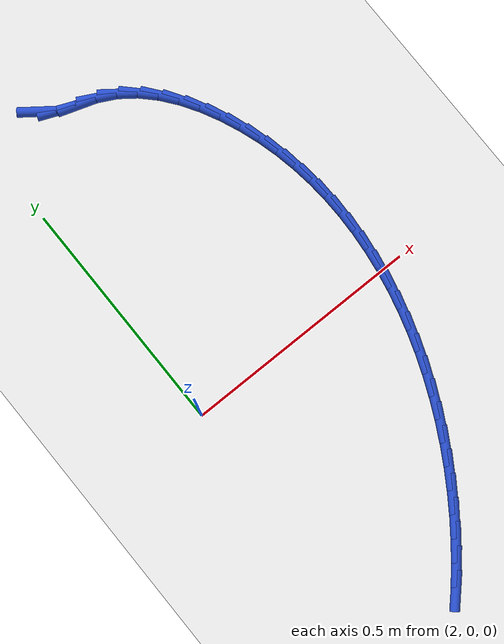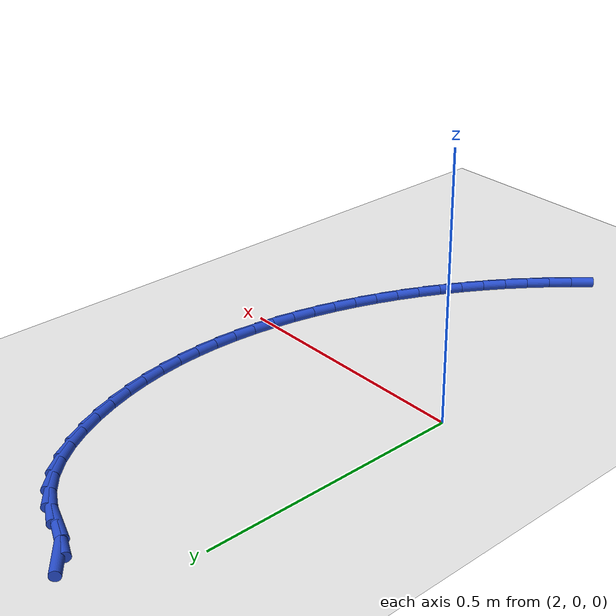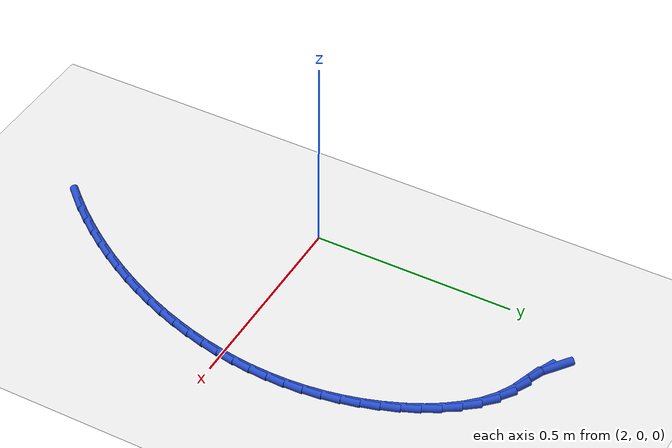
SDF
<sdf version="1.6">
 <world name="default">
  <model name="ground_plane">
   <static>1</static>
   <link name="link">
    <collision name="collision">
     <geometry><plane><normal>0 0 1</normal><size>100 100</size></plane></geometry>
     <surface><friction><ode><mu>100</mu><mu2>50</mu2></ode></friction></surface>
    </collision>
    <visual name="visual">
     <cast_shadows>0</cast_shadows>
     <geometry><plane><normal>0 0 1</normal><size>100 100</size></plane></geometry>
     <material>
      <script><uri>file://media/materials/scripts/gazebo.material</uri><name>Gazebo/WhiteGlow</name></script>
     </material>
    </visual>
   </link>
  </model>
  <model name="line">
   <link name="link_84">
    <pose>2.12291546154615 0.6742505764167075 0.01 0 1.57 -0.6407067921363031</pose>
    <collision name="collision">
     <geometry><cylinder><radius>0.01</radius><length>0.08</length></cylinder></geometry>
    </collision>
    <visual name="visual">
     <material>
      <script><name>Gazebo/Blue</name><uri>file://media/materials/scripts/gazebo.material</uri></script>
     </material>
     <geometry><cylinder><radius>0.01</radius><length>0.08</length></cylinder></geometry>
    </visual>
   </link>
   <link name="link_85">
    <pose>2.1539630951923665 0.6511001257214823 0.01 0 1.57 -0.39601721792617645</pose>
    <collision name="collision">
     <geometry><cylinder><radius>0.01</radius><length>0.08</length></cylinder></geometry>
    </collision>
    <visual name="visual">
     <material>
      <script><name>Gazebo/Blue</name><uri>file://media/materials/scripts/gazebo.material</uri></script>
     </material>
     <geometry><cylinder><radius>0.01</radius><length>0.08</length></cylinder></geometry>
    </visual>
   </link>
   <link name="link_86">
    <pose>2.1913532682345194 0.635467056369339 0.01 0 1.57 -0.3189362826762241</pose>
    <collision name="collision">
     <geometry><cylinder><radius>0.01</radius><length>0.08</length></cylinder></geometry>
    </collision>
    <visual name="visual">
     <material>
      <script><name>Gazebo/Blue</name><uri>file://media/materials/scripts/gazebo.material</uri></script>
     </material>
     <geometry><cylinder><radius>0.01</radius><length>0.08</length></cylinder></geometry>
    </visual>
   </link>
   <link name="link_87">
    <pose>2.231616586133669 0.6221717348677379 0.01 0 1.57 -0.4770995167074334</pose>
    <collision name="collision">
     <geometry><cylinder><radius>0.01</radius><length>0.08</length></cylinder></geometry>
    </collision>
    <visual name="visual">
     <material>
      <script><name>Gazebo/Blue</name><uri>file://media/materials/scripts/gazebo.material</uri></script>
     </material>
     <geometry><cylinder><radius>0.01</radius><length>0.08</length></cylinder></geometry>
    </visual>
   </link>
   <link name="link_88">
    <pose>2.268812657128706 0.6029439782686185 0.01 0 1.57 -0.6448412242707166</pose>
    <collision name="collision">
     <geometry><cylinder><radius>0.01</radius><length>0.08</length></cylinder></geometry>
    </collision>
    <visual name="visual">
     <material>
      <script><name>Gazebo/Blue</name><uri>file://media/materials/scripts/gazebo.material</uri></script>
     </material>
     <geometry><cylinder><radius>0.01</radius><length>0.08</length></cylinder></geometry>
    </visual>
   </link>
   <link name="link_89">
    <pose>2.3023825707190997 0.5776961792482437 0.01 0 1.57 -0.7897595406359486</pose>
    <collision name="collision">
     <geometry><cylinder><radius>0.01</radius><length>0.08</length></cylinder></geometry>
    </collision>
    <visual name="visual">
     <material>
      <script><name>Gazebo/Blue</name><uri>file://media/materials/scripts/gazebo.material</uri></script>
     </material>
     <geometry><cylinder><radius>0.01</radius><length>0.08</length></cylinder></geometry>
    </visual>
   </link>
   <link name="link_90">
    <pose>2.3324466110636592 0.5473687472407215 0.01 0 1.57 -0.9120884586671185</pose>
    <collision name="collision">
     <geometry><cylinder><radius>0.01</radius><length>0.08</length></cylinder></geometry>
    </collision>
    <visual name="visual">
     <material>
      <script><name>Gazebo/Blue</name><uri>file://media/materials/scripts/gazebo.material</uri></script>
     </material>
     <geometry><cylinder><radius>0.01</radius><length>0.08</length></cylinder></geometry>
    </visual>
   </link>
   <link name="link_91">
    <pose>2.3591250623211986 0.5129020916801605 0.01 0 1.57 -1.0146401314525444</pose>
    <collision name="collision">
     <geometry><cylinder><radius>0.01</radius><length>0.08</length></cylinder></geometry>
    </collision>
    <visual name="visual">
     <material>
      <script><name>Gazebo/Blue</name><uri>file://media/materials/scripts/gazebo.material</uri></script>
     </material>
     <geometry><cylinder><radius>0.01</radius><length>0.08</length></cylinder></geometry>
    </visual>
   </link>
   <link name="link_92">
    <pose>2.382538208650529 0.47523662200066935 0.01 0 1.57 -1.1010321141788486</pose>
    <collision name="collision">
     <geometry><cylinder><radius>0.01</radius><length>0.08</length></cylinder></geometry>
    </collision>
    <visual name="visual">
     <material>
      <script><name>Gazebo/Blue</name><uri>file://media/materials/scripts/gazebo.material</uri></script>
     </material>
     <geometry><cylinder><radius>0.01</radius><length>0.08</length></cylinder></geometry>
    </visual>
   </link>
   <link name="link_93">
    <pose>2.4028063342104624 0.43531274763635613 0.01 0 1.57 -1.1748579690619192</pose>
    <collision name="collision">
     <geometry><cylinder><radius>0.01</radius><length>0.08</length></cylinder></geometry>
    </collision>
    <visual name="visual">
     <material>
      <script><name>Gazebo/Blue</name><uri>file://media/materials/scripts/gazebo.material</uri></script>
     </material>
     <geometry><cylinder><radius>0.01</radius><length>0.08</length></cylinder></geometry>
    </visual>
   </link>
   <link name="link_94">
    <pose>2.4200493303554063 0.3940629148728059 0.01 0 1.57 -1.2420887907445428</pose>
    <collision name="collision">
     <geometry><cylinder><radius>0.01</radius><length>0.08</length></cylinder></geometry>
    </collision>
    <visual name="visual">
     <material>
      <script><name>Gazebo/Blue</name><uri>file://media/materials/scripts/gazebo.material</uri></script>
     </material>
     <geometry><cylinder><radius>0.01</radius><length>0.08</length></cylinder></geometry>
    </visual>
   </link>
   <link name="link_95">
    <pose>2.434370159267804 0.35207637244097806 0.01 0 1.57 -1.3075979759672174</pose>
    <collision name="collision">
     <geometry><cylinder><radius>0.01</radius><length>0.08</length></cylinder></geometry>
    </collision>
    <visual name="visual">
     <material>
      <script><name>Gazebo/Blue</name><uri>file://media/materials/scripts/gazebo.material</uri></script>
     </material>
     <geometry><cylinder><radius>0.01</radius><length>0.08</length></cylinder></geometry>
    </visual>
   </link>
   <link name="link_96">
    <pose>2.445848780602093 0.3094760490781601 0.01 0 1.57 -1.3713986083399323</pose>
    <collision name="collision">
     <geometry><cylinder><radius>0.01</radius><length>0.08</length></cylinder></geometry>
    </collision>
    <visual name="visual">
     <material>
      <script><name>Gazebo/Blue</name><uri>file://media/materials/scripts/gazebo.material</uri></script>
     </material>
     <geometry><cylinder><radius>0.01</radius><length>0.08</length></cylinder></geometry>
    </visual>
   </link>
   <link name="link_97">
    <pose>2.454563510638193 0.26635155812284605 0.01 0 1.57 -1.4332568355106787</pose>
    <collision name="collision">
     <geometry><cylinder><radius>0.01</radius><length>0.08</length></cylinder></geometry>
    </collision>
    <visual name="visual">
     <material>
      <script><name>Gazebo/Blue</name><uri>file://media/materials/scripts/gazebo.material</uri></script>
     </material>
     <geometry><cylinder><radius>0.01</radius><length>0.08</length></cylinder></geometry>
    </visual>
   </link>
   <link name="link_98">
    <pose>2.4605926656560215 0.2227925129135312 0.01 0 1.57 -1.4930131295486242</pose>
    <collision name="collision">
     <geometry><cylinder><radius>0.01</radius><length>0.08</length></cylinder></geometry>
    </collision>
    <visual name="visual">
     <material>
      <script><name>Gazebo/Blue</name><uri>file://media/materials/scripts/gazebo.material</uri></script>
     </material>
     <geometry><cylinder><radius>0.01</radius><length>0.08</length></cylinder></geometry>
    </visual>
   </link>
   <link name="link_99">
    <pose>2.4640145619354996 0.1788885267887105 0.01 0 1.57 -1.5505778934114505</pose>
    <collision name="collision">
     <geometry><cylinder><radius>0.01</radius><length>0.08</length></cylinder></geometry>
    </collision>
    <visual name="visual">
     <material>
      <script><name>Gazebo/Blue</name><uri>file://media/materials/scripts/gazebo.material</uri></script>
     </material>
     <geometry><cylinder><radius>0.01</radius><length>0.08</length></cylinder></geometry>
    </visual>
   </link>
   <link name="link_100">
    <pose>2.464907515756545 0.13472921308687905 0.01 0 1.57 1.5356687322598306</pose>
    <collision name="collision">
     <geometry><cylinder><radius>0.01</radius><length>0.08</length></cylinder></geometry>
    </collision>
    <visual name="visual">
     <material>
      <script><name>Gazebo/Blue</name><uri>file://media/materials/scripts/gazebo.material</uri></script>
     </material>
     <geometry><cylinder><radius>0.01</radius><length>0.08</length></cylinder></geometry>
    </visual>
   </link>
   <link name="link_101">
    <pose>2.463349843399079 0.09040418514653177 0.01 0 1.57 1.482515519305764</pose>
    <collision name="collision">
     <geometry><cylinder><radius>0.01</radius><length>0.08</length></cylinder></geometry>
    </collision>
    <visual name="visual">
     <material>
      <script><name>Gazebo/Blue</name><uri>file://media/materials/scripts/gazebo.material</uri></script>
     </material>
     <geometry><cylinder><radius>0.01</radius><length>0.08</length></cylinder></geometry>
    </visual>
   </link>
   <link name="link_102">
    <pose>2.4594198611430205 0.04600305630616357 0.01 0 1.57 1.4314858515382165</pose>
    <collision name="collision">
     <geometry><cylinder><radius>0.01</radius><length>0.08</length></cylinder></geometry>
    </collision>
    <visual name="visual">
     <material>
      <script><name>Gazebo/Blue</name><uri>file://media/materials/scripts/gazebo.material</uri></script>
     </material>
     <geometry><cylinder><radius>0.01</radius><length>0.08</length></cylinder></geometry>
    </visual>
   </link>
   <link name="link_103">
    <pose>2.4531958852682885 0.001615439904269253 0.01 0 1.57 1.3824765006985245</pose>
    <collision name="collision">
     <geometry><cylinder><radius>0.01</radius><length>0.08</length></cylinder></geometry>
    </collision>
    <visual name="visual">
     <material>
      <script><name>Gazebo/Blue</name><uri>file://media/materials/scripts/gazebo.material</uri></script>
     </material>
     <geometry><cylinder><radius>0.01</radius><length>0.08</length></cylinder></geometry>
    </visual>
   </link>
   <link name="link_104">
    <pose>2.444756232054803 -0.042669050720656035 0.01 0 1.57 1.3353587032412921</pose>
    <collision name="collision">
     <geometry><cylinder><radius>0.01</radius><length>0.08</length></cylinder></geometry>
    </collision>
    <visual name="visual">
     <material>
      <script><name>Gazebo/Blue</name><uri>file://media/materials/scripts/gazebo.material</uri></script>
     </material>
     <geometry><cylinder><radius>0.01</radius><length>0.08</length></cylinder></geometry>
    </visual>
   </link>
   <link name="link_105">
    <pose>2.4341792177824826 -0.0867608022301174 0.01 0 1.57 1.2899853141110689</pose>
    <collision name="collision">
     <geometry><cylinder><radius>0.01</radius><length>0.08</length></cylinder></geometry>
    </collision>
    <visual name="visual">
     <material>
      <script><name>Gazebo/Blue</name><uri>file://media/materials/scripts/gazebo.material</uri></script>
     </material>
     <geometry><cylinder><radius>0.01</radius><length>0.08</length></cylinder></geometry>
    </visual>
   </link>
   <link name="link_106">
    <pose>2.421543158731248 -0.13057020128561989 0.01 0 1.57 1.2461965978270022</pose>
    <collision name="collision">
     <geometry><cylinder><radius>0.01</radius><length>0.08</length></cylinder></geometry>
    </collision>
    <visual name="visual">
     <material>
      <script><name>Gazebo/Blue</name><uri>file://media/materials/scripts/gazebo.material</uri></script>
     </material>
     <geometry><cylinder><radius>0.01</radius><length>0.08</length></cylinder></geometry>
    </visual>
   </link>
   <link name="link_107">
    <pose>2.406926371181018 -0.17400763454866863 0.01 0 1.57 1.2038247029825826</pose>
    <collision name="collision">
     <geometry><cylinder><radius>0.01</radius><length>0.08</length></cylinder></geometry>
    </collision>
    <visual name="visual">
     <material>
      <script><name>Gazebo/Blue</name><uri>file://media/materials/scripts/gazebo.material</uri></script>
     </material>
     <geometry><cylinder><radius>0.01</radius><length>0.08</length></cylinder></geometry>
    </visual>
   </link>
   <link name="link_108">
    <pose>2.390407171411711 -0.21698348868076855 0.01 0 1.57 1.1626969467034307</pose>
    <collision name="collision">
     <geometry><cylinder><radius>0.01</radius><length>0.08</length></cylinder></geometry>
    </collision>
    <visual name="visual">
     <material>
      <script><name>Gazebo/Blue</name><uri>file://media/materials/scripts/gazebo.material</uri></script>
     </material>
     <geometry><cylinder><radius>0.01</radius><length>0.08</length></cylinder></geometry>
    </visual>
   </link>
   <link name="link_109">
    <pose>2.3720638757032475 -0.25940815034342474 0.01 0 1.57 1.122638072122885</pose>
    <collision name="collision">
     <geometry><cylinder><radius>0.01</radius><length>0.08</length></cylinder></geometry>
    </collision>
    <visual name="visual">
     <material>
      <script><name>Gazebo/Blue</name><uri>file://media/materials/scripts/gazebo.material</uri></script>
     </material>
     <geometry><cylinder><radius>0.01</radius><length>0.08</length></cylinder></geometry>
    </visual>
   </link>
   <link name="link_110">
    <pose>2.3519748003355483 -0.30119200619814224 0.01 0 1.57 1.0834716491369403</pose>
    <collision name="collision">
     <geometry><cylinder><radius>0.01</radius><length>0.08</length></cylinder></geometry>
    </collision>
    <visual name="visual">
     <material>
      <script><name>Gazebo/Blue</name><uri>file://media/materials/scripts/gazebo.material</uri></script>
     </material>
     <geometry><cylinder><radius>0.01</radius><length>0.08</length></cylinder></geometry>
    </visual>
   </link>
   <link name="link_111">
    <pose>2.3302182615885303 -0.3422454429064261 0.01 0 1.57 1.0450207785749936</pose>
    <collision name="collision">
     <geometry><cylinder><radius>0.01</radius><length>0.08</length></cylinder></geometry>
    </collision>
    <visual name="visual">
     <material>
      <script><name>Gazebo/Blue</name><uri>file://media/materials/scripts/gazebo.material</uri></script>
     </material>
     <geometry><cylinder><radius>0.01</radius><length>0.08</length></cylinder></geometry>
    </visual>
   </link>
   <link name="link_112">
    <pose>2.3068725757421142 -0.3824788471297815 0.01 0 1.57 1.0071082412878738</pose>
    <collision name="collision">
     <geometry><cylinder><radius>0.01</radius><length>0.08</length></cylinder></geometry>
    </collision>
    <visual name="visual">
     <material>
      <script><name>Gazebo/Blue</name><uri>file://media/materials/scripts/gazebo.material</uri></script>
     </material>
     <geometry><cylinder><radius>0.01</radius><length>0.08</length></cylinder></geometry>
    </visual>
   </link>
   <link name="link_113">
    <pose>2.28201605907622 -0.4218026055297134 0.01 0 1.57 0.9695562124955402</pose>
    <collision name="collision">
     <geometry><cylinder><radius>0.01</radius><length>0.08</length></cylinder></geometry>
    </collision>
    <visual name="visual">
     <material>
      <script><name>Gazebo/Blue</name><uri>file://media/materials/scripts/gazebo.material</uri></script>
     </material>
     <geometry><cylinder><radius>0.01</radius><length>0.08</length></cylinder></geometry>
    </visual>
   </link>
   <link name="link_114">
    <pose>2.2557270278707664 -0.4601271047677268 0.01 0 1.57 0.932185641843404</pose>
    <collision name="collision">
     <geometry><cylinder><radius>0.01</radius><length>0.08</length></cylinder></geometry>
    </collision>
    <visual name="visual">
     <material>
      <script><name>Gazebo/Blue</name><uri>file://media/materials/scripts/gazebo.material</uri></script>
     </material>
     <geometry><cylinder><radius>0.01</radius><length>0.08</length></cylinder></geometry>
    </visual>
   </link>
   <link name="link_115">
    <pose>2.228083798405672 -0.4973627315053266 0.01 0 1.57 0.8948153833047394</pose>
    <collision name="collision">
     <geometry><cylinder><radius>0.01</radius><length>0.08</length></cylinder></geometry>
    </collision>
    <visual name="visual">
     <material>
      <script><name>Gazebo/Blue</name><uri>file://media/materials/scripts/gazebo.material</uri></script>
     </material>
     <geometry><cylinder><radius>0.01</radius><length>0.08</length></cylinder></geometry>
    </visual>
   </link>
   <link name="link_116">
    <pose>2.199164686960859 -0.5334198724040174 0.01 0 1.57 0.8572611477602697</pose>
    <collision name="collision">
     <geometry><cylinder><radius>0.01</radius><length>0.08</length></cylinder></geometry>
    </collision>
    <visual name="visual">
     <material>
      <script><name>Gazebo/Blue</name><uri>file://media/materials/scripts/gazebo.material</uri></script>
     </material>
     <geometry><cylinder><radius>0.01</radius><length>0.08</length></cylinder></geometry>
    </visual>
   </link>
   <link name="link_117">
    <pose>2.169048009816244 -0.5682089141253057 0.01 0 1.57 0.8193343457972647</pose>
    <collision name="collision">
     <geometry><cylinder><radius>0.01</radius><length>0.08</length></cylinder></geometry>
    </collision>
    <visual name="visual">
     <material>
      <script><name>Gazebo/Blue</name><uri>file://media/materials/scripts/gazebo.material</uri></script>
     </material>
     <geometry><cylinder><radius>0.01</radius><length>0.08</length></cylinder></geometry>
    </visual>
   </link>
  </model>
 </world>
</sdf>
